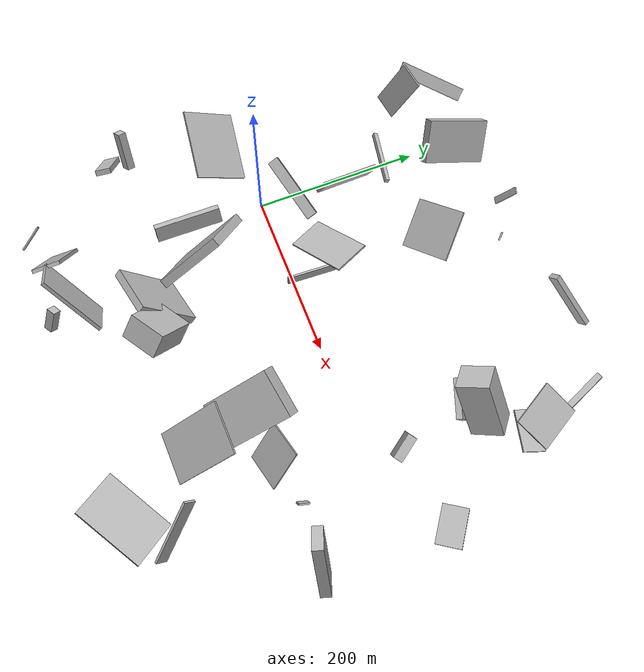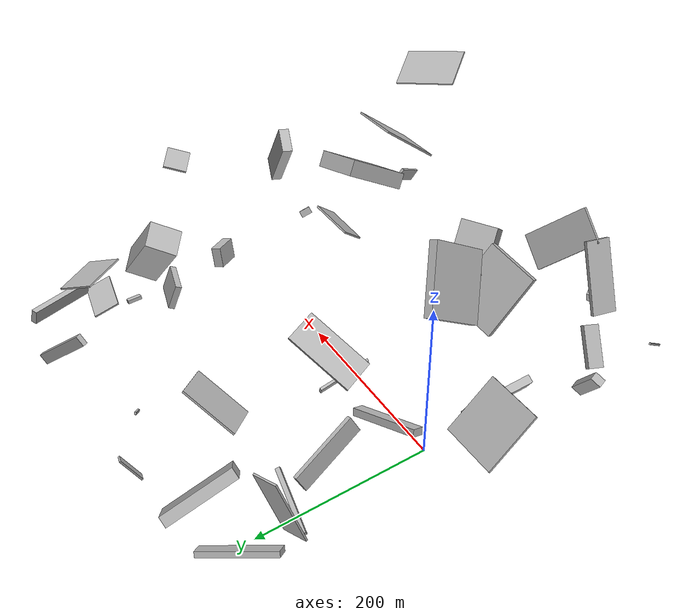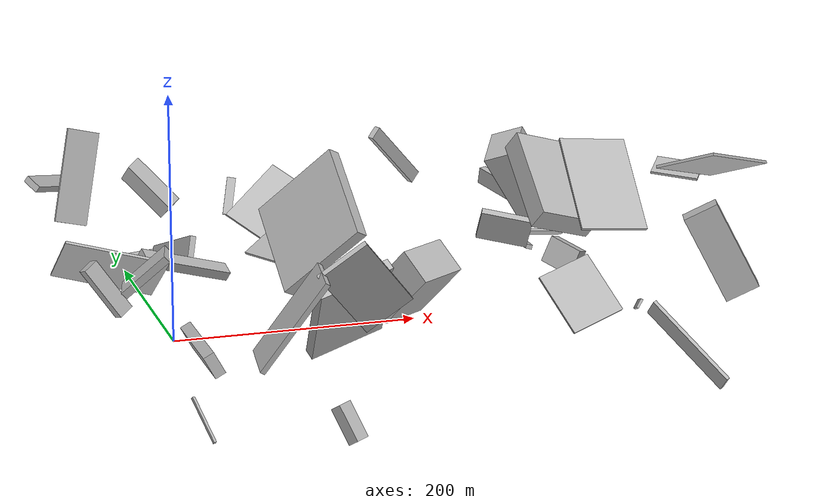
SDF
<sdf version="1.6">
 <world name="default">
  <scene>
   <sky><clouds><speed>12</speed></clouds></sky>
   <ambient>0.4 0.4 0.4 1</ambient>
   <background>0.7 0.7 0.7 1</background>
   <shadows>1</shadows>
  </scene>
  <gravity>0 0 -9.8066</gravity>
  <magnetic_field>6e-06 2.3e-05 -4.2e-05</magnetic_field>
  <physics default="0" name="default_physics" type="ode">
   <ode>
    <solver>
     <type>quick</type>
     <iters>10</iters>
     <sor>1.0</sor>
     <use_dynamic_moi_rescaling>0</use_dynamic_moi_rescaling>
    </solver>
    <constraints>
     <cfm>0</cfm>
     <erp>0.2</erp>
     <contact_max_correcting_vel>100</contact_max_correcting_vel>
     <contact_surface_layer>0.001</contact_surface_layer>
    </constraints>
   </ode>
   <max_step_size>0.004</max_step_size>
   <real_time_factor>1</real_time_factor>
   <real_time_update_rate>250</real_time_update_rate>
  </physics>
  <light name="sun" type="directional">
   <pose>0 0 10 0 0 0</pose>
   <diffuse>0.8 0.8 0.8 1</diffuse>
   <specular>0.2 0.2 0.2 1</specular>
   <attenuation>
    <range>1000</range>
    <constant>0.9</constant>
    <linear>0.01</linear>
    <quadratic>0.001</quadratic>
   </attenuation>
   <direction>-0.5 0.1 -0.9</direction>
  </light>
  <model name="building_1">
   <static>0</static>
   <pose>349.82125936559237 41.68971094735706 28.170236460274374 0.8340557505453762 -1.1908998121950929 -0.19023025289447132</pose>
   <link name="link">
    <gravity>0</gravity>
    <pose>0 0 5.5 0 0 0</pose>
    <collision name="collision"><geometry><box><size>23 30 11</size></box></geometry></collision>
    <visual name="visual">
     <cast_shadows>0</cast_shadows>
     <geometry><box><size>23 30 11</size></box></geometry>
     <material>
      <script>
       <uri>model://HANNAS_wall/materials/scripts</uri>
       <uri>model://HANNAS_wall/materials/textures</uri>
       <name>vrc/HANNAS_wall</name>
      </script>
     </material>
    </visual>
   </link>
  </model>
  <model name="building_2">
   <static>0</static>
   <pose>8.81869924668711 -238.36012747514815 60.67924000958609 -0.5850413604162317 0.19263767378185429 -1.6573654010682621</pose>
   <link name="link">
    <gravity>0</gravity>
    <pose>0 0 40.0 0 0 0</pose>
    <collision name="collision"><geometry><box><size>31 4 80</size></box></geometry></collision>
    <visual name="visual">
     <cast_shadows>0</cast_shadows>
     <geometry><box><size>31 4 80</size></box></geometry>
     <material>
      <script>
       <uri>model://HANNAS_wall/materials/scripts</uri>
       <uri>model://HANNAS_wall/materials/textures</uri>
       <name>vrc/HANNAS_wall</name>
      </script>
     </material>
    </visual>
   </link>
  </model>
  <model name="building_3">
   <static>0</static>
   <pose>374.7365830907461 190.51967760932737 51.173917653029505 3.0684677083578333 -0.46442658838951595 -2.592259567346097</pose>
   <link name="link">
    <gravity>0</gravity>
    <pose>0 0 1.0 0 0 0</pose>
    <collision name="collision"><geometry><box><size>46 54 2</size></box></geometry></collision>
    <visual name="visual">
     <cast_shadows>0</cast_shadows>
     <geometry><box><size>46 54 2</size></box></geometry>
     <material>
      <script>
       <uri>model://HANNAS_wall/materials/scripts</uri>
       <uri>model://HANNAS_wall/materials/textures</uri>
       <name>vrc/HANNAS_wall</name>
      </script>
     </material>
    </visual>
   </link>
  </model>
  <model name="building_4">
   <static>0</static>
   <pose>359.8860015499279 131.5861223876468 47.01395848643492 -0.3867364031681579 -0.4516853999190005 1.0233324245525293</pose>
   <link name="link">
    <gravity>0</gravity>
    <pose>0 0 37.5 0 0 0</pose>
    <collision name="collision"><geometry><box><size>36 30 75</size></box></geometry></collision>
    <visual name="visual">
     <cast_shadows>0</cast_shadows>
     <geometry><box><size>36 30 75</size></box></geometry>
     <material>
      <script>
       <uri>model://HANNAS_wall/materials/scripts</uri>
       <uri>model://HANNAS_wall/materials/textures</uri>
       <name>vrc/HANNAS_wall</name>
      </script>
     </material>
    </visual>
   </link>
  </model>
  <model name="building_5">
   <static>0</static>
   <pose>64.54353268585518 -75.70517276091792 90.01278655310543 -0.7302167817231363 -0.45916385850214797 -2.715107710001246</pose>
   <link name="link">
    <gravity>0</gravity>
    <pose>0 0 40.0 0 0 0</pose>
    <collision name="collision"><geometry><box><size>10 80 80</size></box></geometry></collision>
    <visual name="visual">
     <cast_shadows>0</cast_shadows>
     <geometry><box><size>10 80 80</size></box></geometry>
     <material>
      <script>
       <uri>model://HANNAS_wall/materials/scripts</uri>
       <uri>model://HANNAS_wall/materials/textures</uri>
       <name>vrc/HANNAS_wall</name>
      </script>
     </material>
    </visual>
   </link>
  </model>
  <model name="building_6">
   <static>0</static>
   <pose>252.00282444369262 -110.93268321577995 141.77672095443523 1.9215184940854835 -0.6135035695256106 1.54114658669659</pose>
   <link name="link">
    <gravity>0</gravity>
    <pose>0 0 25.5 0 0 0</pose>
    <collision name="collision"><geometry><box><size>80 18 51</size></box></geometry></collision>
    <visual name="visual">
     <cast_shadows>0</cast_shadows>
     <geometry><box><size>80 18 51</size></box></geometry>
     <material>
      <script>
       <uri>model://HANNAS_wall/materials/scripts</uri>
       <uri>model://HANNAS_wall/materials/textures</uri>
       <name>vrc/HANNAS_wall</name>
      </script>
     </material>
    </visual>
   </link>
  </model>
  <model name="building_7">
   <static>0</static>
   <pose>1.7452661445493245 -133.1779420653363 23.857815285049476 -1.6047621022929108 1.0745264765675637 -0.034429270007671</pose>
   <link name="link">
    <gravity>0</gravity>
    <pose>0 0 40.0 0 0 0</pose>
    <collision name="collision"><geometry><box><size>19 9 80</size></box></geometry></collision>
    <visual name="visual">
     <cast_shadows>0</cast_shadows>
     <geometry><box><size>19 9 80</size></box></geometry>
     <material>
      <script>
       <uri>model://HANNAS_wall/materials/scripts</uri>
       <uri>model://HANNAS_wall/materials/textures</uri>
       <name>vrc/HANNAS_wall</name>
      </script>
     </material>
    </visual>
   </link>
  </model>
  <model name="building_8">
   <static>0</static>
   <pose>53.92124224051565 46.11613948958072 39.306231728564306 1.2276710681438026 0.40212450846923325 -1.424433576137845</pose>
   <link name="link">
    <gravity>0</gravity>
    <pose>0 0 40.0 0 0 0</pose>
    <collision name="collision"><geometry><box><size>13 8 80</size></box></geometry></collision>
    <visual name="visual">
     <cast_shadows>0</cast_shadows>
     <geometry><box><size>13 8 80</size></box></geometry>
     <material>
      <script>
       <uri>model://HANNAS_wall/materials/scripts</uri>
       <uri>model://HANNAS_wall/materials/textures</uri>
       <name>vrc/HANNAS_wall</name>
      </script>
     </material>
    </visual>
   </link>
  </model>
  <model name="building_9">
   <static>0</static>
   <pose>-39.09397867815942 -271.96332287795394 34.83442034353776 0.7140662825975247 0.030984990934941285 0.3375668738715703</pose>
   <link name="link">
    <gravity>0</gravity>
    <pose>0 0 1.0 0 0 0</pose>
    <collision name="collision"><geometry><box><size>2 37 2</size></box></geometry></collision>
    <visual name="visual">
     <cast_shadows>0</cast_shadows>
     <geometry><box><size>2 37 2</size></box></geometry>
     <material>
      <script>
       <uri>model://HANNAS_wall/materials/scripts</uri>
       <uri>model://HANNAS_wall/materials/textures</uri>
       <name>vrc/HANNAS_wall</name>
      </script>
     </material>
    </visual>
   </link>
  </model>
  <model name="building_10">
   <static>0</static>
   <pose>111.97105953231477 43.01307908588901 71.90610681922405 -0.03477702607912384 -0.48555581183619134 0.43906516318657357</pose>
   <link name="link">
    <gravity>0</gravity>
    <pose>0 0 1.0 0 0 0</pose>
    <collision name="collision"><geometry><box><size>80 42 2</size></box></geometry></collision>
    <visual name="visual">
     <cast_shadows>0</cast_shadows>
     <geometry><box><size>80 42 2</size></box></geometry>
     <material>
      <script>
       <uri>model://HANNAS_wall/materials/scripts</uri>
       <uri>model://HANNAS_wall/materials/textures</uri>
       <name>vrc/HANNAS_wall</name>
      </script>
     </material>
    </visual>
   </link>
  </model>
  <model name="building_11">
   <static>0</static>
   <pose>-58.17944449058898 -7.272053536134616 54.92692361260568 -0.3942145095760233 0.8656336707202845 -2.009522049185419</pose>
   <link name="link">
    <gravity>0</gravity>
    <pose>0 0 34.5 0 0 0</pose>
    <collision name="collision"><geometry><box><size>2 80 69</size></box></geometry></collision>
    <visual name="visual">
     <cast_shadows>0</cast_shadows>
     <geometry><box><size>2 80 69</size></box></geometry>
     <material>
      <script>
       <uri>model://HANNAS_wall/materials/scripts</uri>
       <uri>model://HANNAS_wall/materials/textures</uri>
       <name>vrc/HANNAS_wall</name>
      </script>
     </material>
    </visual>
   </link>
  </model>
  <model name="building_12">
   <static>0</static>
   <pose>417.7594870141663 -85.64857143831458 56.51534958390004 1.081061658333657 -0.10467026455516239 1.2564064808575588</pose>
   <link name="link">
    <gravity>0</gravity>
    <pose>0 0 14.5 0 0 0</pose>
    <collision name="collision"><geometry><box><size>12 80 29</size></box></geometry></collision>
    <visual name="visual">
     <cast_shadows>0</cast_shadows>
     <geometry><box><size>12 80 29</size></box></geometry>
     <material>
      <script>
       <uri>model://HANNAS_wall/materials/scripts</uri>
       <uri>model://HANNAS_wall/materials/textures</uri>
       <name>vrc/HANNAS_wall</name>
      </script>
     </material>
    </visual>
   </link>
  </model>
  <model name="building_13">
   <static>0</static>
   <pose>128.46066493885036 167.4538867504176 54.63718205324693 0.6051659294268754 0.46136706136575795 -0.7578293198164566</pose>
   <link name="link">
    <gravity>0</gravity>
    <pose>0 0 1.0 0 0 0</pose>
    <collision name="collision"><geometry><box><size>58 66 2</size></box></geometry></collision>
    <visual name="visual">
     <cast_shadows>0</cast_shadows>
     <geometry><box><size>58 66 2</size></box></geometry>
     <material>
      <script>
       <uri>model://HANNAS_wall/materials/scripts</uri>
       <uri>model://HANNAS_wall/materials/textures</uri>
       <name>vrc/HANNAS_wall</name>
      </script>
     </material>
    </visual>
   </link>
  </model>
  <model name="building_14">
   <static>0</static>
   <pose>69.55110609205096 -163.41956307394747 58.35190762547015 1.2683277799123418 -0.6087284196719275 1.9456638722402047</pose>
   <link name="link">
    <gravity>0</gravity>
    <pose>0 0 30.5 0 0 0</pose>
    <collision name="collision"><geometry><box><size>9 80 61</size></box></geometry></collision>
    <visual name="visual">
     <cast_shadows>0</cast_shadows>
     <geometry><box><size>9 80 61</size></box></geometry>
     <material>
      <script>
       <uri>model://HANNAS_wall/materials/scripts</uri>
       <uri>model://HANNAS_wall/materials/textures</uri>
       <name>vrc/HANNAS_wall</name>
      </script>
     </material>
    </visual>
   </link>
  </model>
  <model name="building_15">
   <static>0</static>
   <pose>166.19439951212405 234.3412494261842 49.23780423415248 -1.0475857719928032 -0.03977335441342273 0.7588886585931967</pose>
   <link name="link">
    <gravity>0</gravity>
    <pose>0 0 5.0 0 0 0</pose>
    <collision name="collision"><geometry><box><size>2 3 10</size></box></geometry></collision>
    <visual name="visual">
     <cast_shadows>0</cast_shadows>
     <geometry><box><size>2 3 10</size></box></geometry>
     <material>
      <script>
       <uri>model://HANNAS_wall/materials/scripts</uri>
       <uri>model://HANNAS_wall/materials/textures</uri>
       <name>vrc/HANNAS_wall</name>
      </script>
     </material>
    </visual>
   </link>
  </model>
  <model name="building_16">
   <static>0</static>
   <pose>2.0291875884320305 154.55460814547666 27.458900238390218 -1.9810062100788102 -0.15286498150643538 -0.20681269519603923</pose>
   <link name="link">
    <gravity>0</gravity>
    <pose>0 0 2.5 0 0 0</pose>
    <collision name="collision"><geometry><box><size>75 5 5</size></box></geometry></collision>
    <visual name="visual">
     <cast_shadows>0</cast_shadows>
     <geometry><box><size>75 5 5</size></box></geometry>
     <material>
      <script>
       <uri>model://HANNAS_wall/materials/scripts</uri>
       <uri>model://HANNAS_wall/materials/textures</uri>
       <name>vrc/HANNAS_wall</name>
      </script>
     </material>
    </visual>
   </link>
  </model>
  <model name="building_17">
   <static>0</static>
   <pose>-51.30336170161982 241.6233301580961 69.87520899854005 -0.2564791677292438 0.5609472336711286 -0.8671249269686518</pose>
   <link name="link">
    <gravity>0</gravity>
    <pose>0 0 3.0 0 0 0</pose>
    <collision name="collision"><geometry><box><size>15 80 6</size></box></geometry></collision>
    <visual name="visual">
     <cast_shadows>0</cast_shadows>
     <geometry><box><size>15 80 6</size></box></geometry>
     <material>
      <script>
       <uri>model://HANNAS_wall/materials/scripts</uri>
       <uri>model://HANNAS_wall/materials/textures</uri>
       <name>vrc/HANNAS_wall</name>
      </script>
     </material>
    </visual>
   </link>
  </model>
  <model name="building_18">
   <static>0</static>
   <pose>362.7234308609765 -84.38050994334799 22.49995074043746 0.6345407709700901 0.9428428853367942 -2.810201065399304</pose>
   <link name="link">
    <gravity>0</gravity>
    <pose>0 0 1.0 0 0 0</pose>
    <collision name="collision"><geometry><box><size>8 13 2</size></box></geometry></collision>
    <visual name="visual">
     <cast_shadows>0</cast_shadows>
     <geometry><box><size>8 13 2</size></box></geometry>
     <material>
      <script>
       <uri>model://HANNAS_wall/materials/scripts</uri>
       <uri>model://HANNAS_wall/materials/textures</uri>
       <name>vrc/HANNAS_wall</name>
      </script>
     </material>
    </visual>
   </link>
  </model>
  <model name="building_19">
   <static>0</static>
   <pose>-48.742301866501386 182.29056078856382 51.56150691113875 -0.1814468283485134 0.2772559291952052 0.25549122916736083</pose>
   <link name="link">
    <gravity>0</gravity>
    <pose>0 0 40.0 0 0 0</pose>
    <collision name="collision"><geometry><box><size>30 2 80</size></box></geometry></collision>
    <visual name="visual">
     <cast_shadows>0</cast_shadows>
     <geometry><box><size>30 2 80</size></box></geometry>
     <material>
      <script>
       <uri>model://HANNAS_wall/materials/scripts</uri>
       <uri>model://HANNAS_wall/materials/textures</uri>
       <name>vrc/HANNAS_wall</name>
      </script>
     </material>
    </visual>
   </link>
  </model>
  <model name="building_20">
   <static>0</static>
   <pose>447.3876469827371 38.16988045373564 99.1921087978622 2.8741380709338555 -0.07994136128664035 2.533950157631829</pose>
   <link name="link">
    <gravity>0</gravity>
    <pose>0 0 1.0 0 0 0</pose>
    <collision name="collision"><geometry><box><size>40 27 2</size></box></geometry></collision>
    <visual name="visual">
     <cast_shadows>0</cast_shadows>
     <geometry><box><size>40 27 2</size></box></geometry>
     <material>
      <script>
       <uri>model://HANNAS_wall/materials/scripts</uri>
       <uri>model://HANNAS_wall/materials/textures</uri>
       <name>vrc/HANNAS_wall</name>
      </script>
     </material>
    </visual>
   </link>
  </model>
  <model name="building_21">
   <static>0</static>
   <pose>86.12459689076913 -237.43097057050352 109.46078483572185 -2.224639128780471 -0.7497889161561114 -2.4618183562874782</pose>
   <link name="link">
    <gravity>0</gravity>
    <pose>0 0 2.0 0 0 0</pose>
    <collision name="collision"><geometry><box><size>80 41 4</size></box></geometry></collision>
    <visual name="visual">
     <cast_shadows>0</cast_shadows>
     <geometry><box><size>80 41 4</size></box></geometry>
     <material>
      <script>
       <uri>model://HANNAS_wall/materials/scripts</uri>
       <uri>model://HANNAS_wall/materials/textures</uri>
       <name>vrc/HANNAS_wall</name>
      </script>
     </material>
    </visual>
   </link>
  </model>
  <model name="building_22">
   <static>0</static>
   <pose>319.6274640146096 113.99804863516913 33.4192233201208 -1.1640752900770068 0.19324582861104345 -0.3226639531384812</pose>
   <link name="link">
    <gravity>0</gravity>
    <pose>0 0 3.5 0 0 0</pose>
    <collision name="collision"><geometry><box><size>45 28 7</size></box></geometry></collision>
    <visual name="visual">
     <cast_shadows>0</cast_shadows>
     <geometry><box><size>45 28 7</size></box></geometry>
     <material>
      <script>
       <uri>model://HANNAS_wall/materials/scripts</uri>
       <uri>model://HANNAS_wall/materials/textures</uri>
       <name>vrc/HANNAS_wall</name>
      </script>
     </material>
    </visual>
   </link>
  </model>
  <model name="building_23">
   <static>0</static>
   <pose>307.0784397901171 -96.92837405152092 40.95388100613404 -2.3178794426915053 -0.27280223648585594 0.2137821797300818</pose>
   <link name="link">
    <gravity>0</gravity>
    <pose>0 0 1.0 0 0 0</pose>
    <collision name="collision"><geometry><box><size>47 53 2</size></box></geometry></collision>
    <visual name="visual">
     <cast_shadows>0</cast_shadows>
     <geometry><box><size>47 53 2</size></box></geometry>
     <material>
      <script>
       <uri>model://HANNAS_wall/materials/scripts</uri>
       <uri>model://HANNAS_wall/materials/textures</uri>
       <name>vrc/HANNAS_wall</name>
      </script>
     </material>
    </visual>
   </link>
  </model>
  <model name="building_24">
   <static>0</static>
   <pose>-65.77362397592464 -137.1707604438476 73.26978866176437 0.30261723824973374 0.5283796120085212 -2.688192719647121</pose>
   <link name="link">
    <gravity>0</gravity>
    <pose>0 0 22.0 0 0 0</pose>
    <collision name="collision"><geometry><box><size>12 9 44</size></box></geometry></collision>
    <visual name="visual">
     <cast_shadows>0</cast_shadows>
     <geometry><box><size>12 9 44</size></box></geometry>
     <material>
      <script>
       <uri>model://HANNAS_wall/materials/scripts</uri>
       <uri>model://HANNAS_wall/materials/textures</uri>
       <name>vrc/HANNAS_wall</name>
      </script>
     </material>
    </visual>
   </link>
  </model>
  <model name="building_25">
   <static>0</static>
   <pose>352.4915398177098 185.40872644922553 9.26879724809579 -1.571112145430701 1.1733320087878192 -1.8090076874862122</pose>
   <link name="link">
    <gravity>0</gravity>
    <pose>0 0 24.0 0 0 0</pose>
    <collision name="collision"><geometry><box><size>2 30 48</size></box></geometry></collision>
    <visual name="visual">
     <cast_shadows>0</cast_shadows>
     <geometry><box><size>2 30 48</size></box></geometry>
     <material>
      <script>
       <uri>model://HANNAS_wall/materials/scripts</uri>
       <uri>model://HANNAS_wall/materials/textures</uri>
       <name>vrc/HANNAS_wall</name>
      </script>
     </material>
    </visual>
   </link>
  </model>
  <model name="building_26">
   <static>0</static>
   <pose>345.16362529016135 -218.9507620123294 34.74816769305422 1.9926095548431688 0.6500778957573602 -0.9160821853046188</pose>
   <link name="link">
    <gravity>0</gravity>
    <pose>0 0 1.5 0 0 0</pose>
    <collision name="collision"><geometry><box><size>80 15 3</size></box></geometry></collision>
    <visual name="visual">
     <cast_shadows>0</cast_shadows>
     <geometry><box><size>80 15 3</size></box></geometry>
     <material>
      <script>
       <uri>model://HANNAS_wall/materials/scripts</uri>
       <uri>model://HANNAS_wall/materials/textures</uri>
       <name>vrc/HANNAS_wall</name>
      </script>
     </material>
    </visual>
   </link>
  </model>
  <model name="building_27">
   <static>0</static>
   <pose>265.82950770165894 270.29424254189155 68.08029100955007 1.6513450572114097 -0.804326784683003 0.42048125134674136</pose>
   <link name="link">
    <gravity>0</gravity>
    <pose>0 0 3.0 0 0 0</pose>
    <collision name="collision"><geometry><box><size>12 75 6</size></box></geometry></collision>
    <visual name="visual">
     <cast_shadows>0</cast_shadows>
     <geometry><box><size>12 75 6</size></box></geometry>
     <material>
      <script>
       <uri>model://HANNAS_wall/materials/scripts</uri>
       <uri>model://HANNAS_wall/materials/textures</uri>
       <name>vrc/HANNAS_wall</name>
      </script>
     </material>
    </visual>
   </link>
  </model>
  <model name="building_28">
   <static>0</static>
   <pose>20.138671906732156 98.48584387144061 32.05082709579173 0.31700098636298535 0.3581767560646329 1.7843505408095803</pose>
   <link name="link">
    <gravity>0</gravity>
    <pose>0 0 10.5 0 0 0</pose>
    <collision name="collision"><geometry><box><size>80 5 21</size></box></geometry></collision>
    <visual name="visual">
     <cast_shadows>0</cast_shadows>
     <geometry><box><size>80 5 21</size></box></geometry>
     <material>
      <script>
       <uri>model://HANNAS_wall/materials/scripts</uri>
       <uri>model://HANNAS_wall/materials/textures</uri>
       <name>vrc/HANNAS_wall</name>
      </script>
     </material>
    </visual>
   </link>
  </model>
  <model name="building_29">
   <static>0</static>
   <pose>292.3370852347762 -194.73635461409813 121.3751583073921 -0.13802449015683926 -0.8160069585973652 -1.44630524115011</pose>
   <link name="link">
    <gravity>0</gravity>
    <pose>0 0 40.0 0 0 0</pose>
    <collision name="collision"><geometry><box><size>2 53 80</size></box></geometry></collision>
    <visual name="visual">
     <cast_shadows>0</cast_shadows>
     <geometry><box><size>2 53 80</size></box></geometry>
     <material>
      <script>
       <uri>model://HANNAS_wall/materials/scripts</uri>
       <uri>model://HANNAS_wall/materials/textures</uri>
       <name>vrc/HANNAS_wall</name>
      </script>
     </material>
    </visual>
   </link>
  </model>
  <model name="building_30">
   <static>0</static>
   <pose>-51.38855192169021 -151.41694065981872 110.71170175321448 -1.8510520622592113 0.7340266278827152 2.707387595985321</pose>
   <link name="link">
    <gravity>0</gravity>
    <pose>0 0 8.5 0 0 0</pose>
    <collision name="collision"><geometry><box><size>43 6 17</size></box></geometry></collision>
    <visual name="visual">
     <cast_shadows>0</cast_shadows>
     <geometry><box><size>43 6 17</size></box></geometry>
     <material>
      <script>
       <uri>model://HANNAS_wall/materials/scripts</uri>
       <uri>model://HANNAS_wall/materials/textures</uri>
       <name>vrc/HANNAS_wall</name>
      </script>
     </material>
    </visual>
   </link>
  </model>
  <model name="building_31">
   <static>0</static>
   <pose>134.0631315705707 -152.6216428561081 67.18684382695727 -0.0012839696157860227 -0.7610731699312471 2.151779849060697</pose>
   <link name="link">
    <gravity>0</gravity>
    <pose>0 0 27.0 0 0 0</pose>
    <collision name="collision"><geometry><box><size>28 42 54</size></box></geometry></collision>
    <visual name="visual">
     <cast_shadows>0</cast_shadows>
     <geometry><box><size>28 42 54</size></box></geometry>
     <material>
      <script>
       <uri>model://HANNAS_wall/materials/scripts</uri>
       <uri>model://HANNAS_wall/materials/textures</uri>
       <name>vrc/HANNAS_wall</name>
      </script>
     </material>
    </visual>
   </link>
  </model>
  <model name="building_32">
   <static>0</static>
   <pose>116.71295810785615 22.141587713526828 21.009049557090435 2.728958225934245 1.1771048773319088 -0.3675169296923688</pose>
   <link name="link">
    <gravity>0</gravity>
    <pose>0 0 1.5 0 0 0</pose>
    <collision name="collision"><geometry><box><size>9 61 3</size></box></geometry></collision>
    <visual name="visual">
     <cast_shadows>0</cast_shadows>
     <geometry><box><size>9 61 3</size></box></geometry>
     <material>
      <script>
       <uri>model://HANNAS_wall/materials/scripts</uri>
       <uri>model://HANNAS_wall/materials/textures</uri>
       <name>vrc/HANNAS_wall</name>
      </script>
     </material>
    </visual>
   </link>
  </model>
  <model name="building_33">
   <static>0</static>
   <pose>351.6815556202475 150.80619667237102 8.021316907124378 -3.048762730786575 1.2821357165168823 -3.099840428268743</pose>
   <link name="link">
    <gravity>0</gravity>
    <pose>0 0 3.0 0 0 0</pose>
    <collision name="collision"><geometry><box><size>4 16 6</size></box></geometry></collision>
    <visual name="visual">
     <cast_shadows>0</cast_shadows>
     <geometry><box><size>4 16 6</size></box></geometry>
     <material>
      <script>
       <uri>model://HANNAS_wall/materials/scripts</uri>
       <uri>model://HANNAS_wall/materials/textures</uri>
       <name>vrc/HANNAS_wall</name>
      </script>
     </material>
    </visual>
   </link>
  </model>
  <model name="building_34">
   <static>0</static>
   <pose>373.7171756222964 -229.49052602250336 170.62260932843776 0.9035337539448872 1.1305782268720261 -1.6478235479873957</pose>
   <link name="link">
    <gravity>0</gravity>
    <pose>0 0 36.0 0 0 0</pose>
    <collision name="collision"><geometry><box><size>2 48 72</size></box></geometry></collision>
    <visual name="visual">
     <cast_shadows>0</cast_shadows>
     <geometry><box><size>2 48 72</size></box></geometry>
     <material>
      <script>
       <uri>model://HANNAS_wall/materials/scripts</uri>
       <uri>model://HANNAS_wall/materials/textures</uri>
       <name>vrc/HANNAS_wall</name>
      </script>
     </material>
    </visual>
   </link>
  </model>
  <model name="building_35">
   <static>0</static>
   <pose>36.57286655594743 237.4774771187013 66.15556418240709 2.3036541663644132 -0.3734123974401612 -1.676232500882162</pose>
   <link name="link">
    <gravity>0</gravity>
    <pose>0 0 6.0 0 0 0</pose>
    <collision name="collision"><geometry><box><size>80 50 12</size></box></geometry></collision>
    <visual name="visual">
     <cast_shadows>0</cast_shadows>
     <geometry><box><size>80 50 12</size></box></geometry>
     <material>
      <script>
       <uri>model://HANNAS_wall/materials/scripts</uri>
       <uri>model://HANNAS_wall/materials/textures</uri>
       <name>vrc/HANNAS_wall</name>
      </script>
     </material>
    </visual>
   </link>
  </model>
  <model name="building_36">
   <static>0</static>
   <pose>107.62934116204805 263.00202146874557 24.926938609122253 0.17028812880062472 0.5333293668619514 1.4103670238470625</pose>
   <link name="link">
    <gravity>0</gravity>
    <pose>0 0 17.5 0 0 0</pose>
    <collision name="collision"><geometry><box><size>2 8 35</size></box></geometry></collision>
    <visual name="visual">
     <cast_shadows>0</cast_shadows>
     <geometry><box><size>2 8 35</size></box></geometry>
     <material>
      <script>
       <uri>model://HANNAS_wall/materials/scripts</uri>
       <uri>model://HANNAS_wall/materials/textures</uri>
       <name>vrc/HANNAS_wall</name>
      </script>
     </material>
    </visual>
   </link>
  </model>
  <model name="building_37">
   <static>0</static>
   <pose>382.7558820309114 194.54578933860495 27.239668830446067 -0.21227896500257726 1.3716079316447054 1.73949844382481</pose>
   <link name="link">
    <gravity>0</gravity>
    <pose>0 0 40.0 0 0 0</pose>
    <collision name="collision"><geometry><box><size>15 7 80</size></box></geometry></collision>
    <visual name="visual">
     <cast_shadows>0</cast_shadows>
     <geometry><box><size>15 7 80</size></box></geometry>
     <material>
      <script>
       <uri>model://HANNAS_wall/materials/scripts</uri>
       <uri>model://HANNAS_wall/materials/textures</uri>
       <name>vrc/HANNAS_wall</name>
      </script>
     </material>
    </visual>
   </link>
  </model>
  <model name="building_38">
   <static>0</static>
   <pose>67.9958666051847 -274.4941606275053 24.45209621391143 1.7359742806660274 0.9948467454315728 -0.8959872982802107</pose>
   <link name="link">
    <gravity>0</gravity>
    <pose>0 0 5.5 0 0 0</pose>
    <collision name="collision"><geometry><box><size>28 10 11</size></box></geometry></collision>
    <visual name="visual">
     <cast_shadows>0</cast_shadows>
     <geometry><box><size>28 10 11</size></box></geometry>
     <material>
      <script>
       <uri>model://HANNAS_wall/materials/scripts</uri>
       <uri>model://HANNAS_wall/materials/textures</uri>
       <name>vrc/HANNAS_wall</name>
      </script>
     </material>
    </visual>
   </link>
  </model>
 </world>
</sdf>
